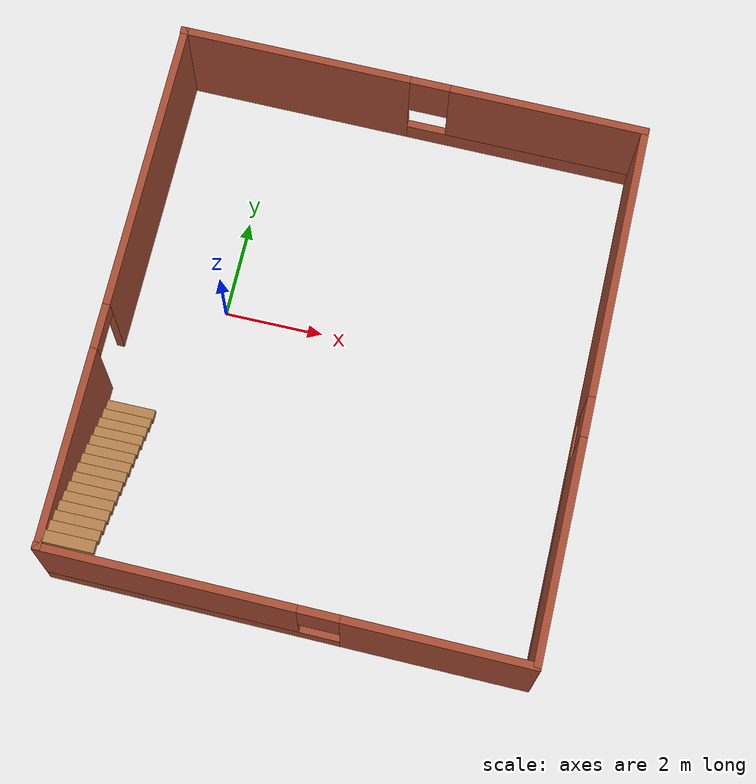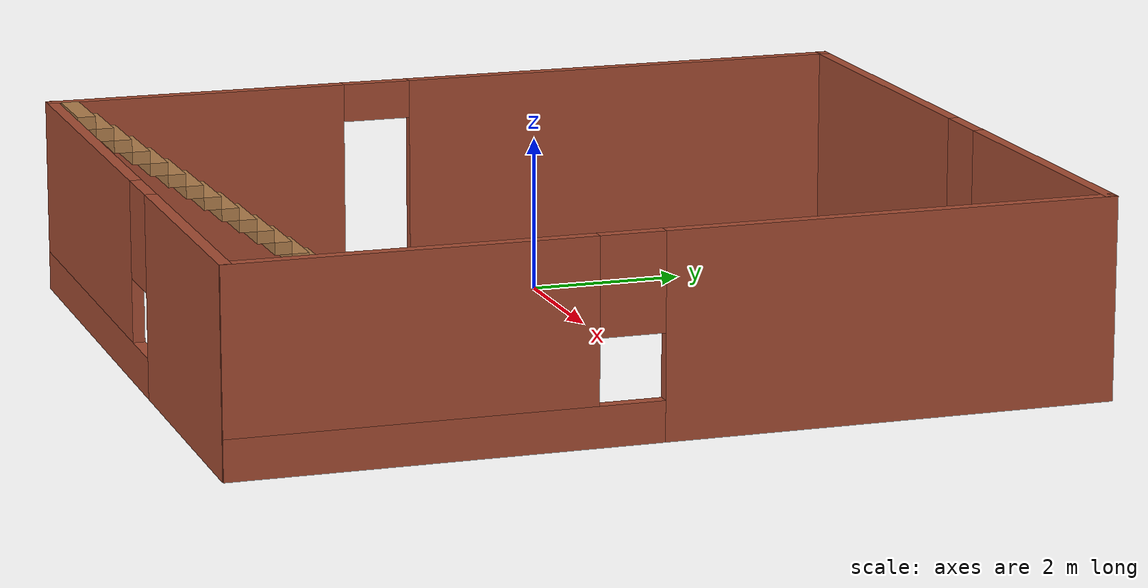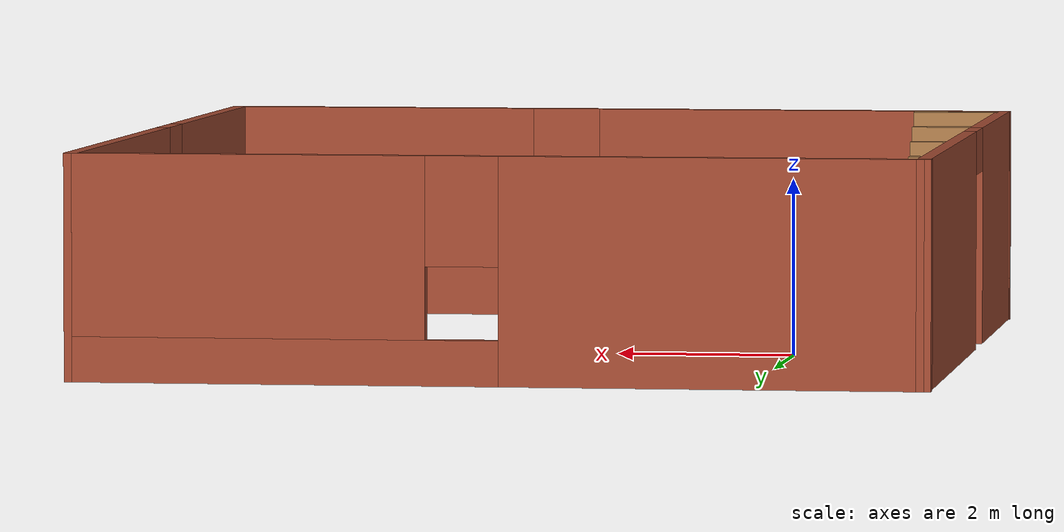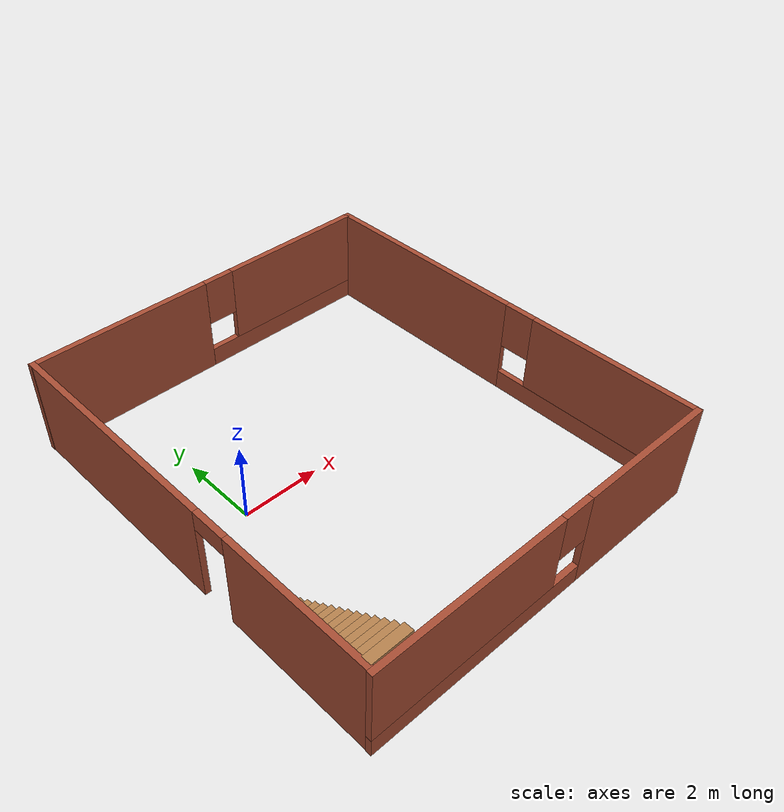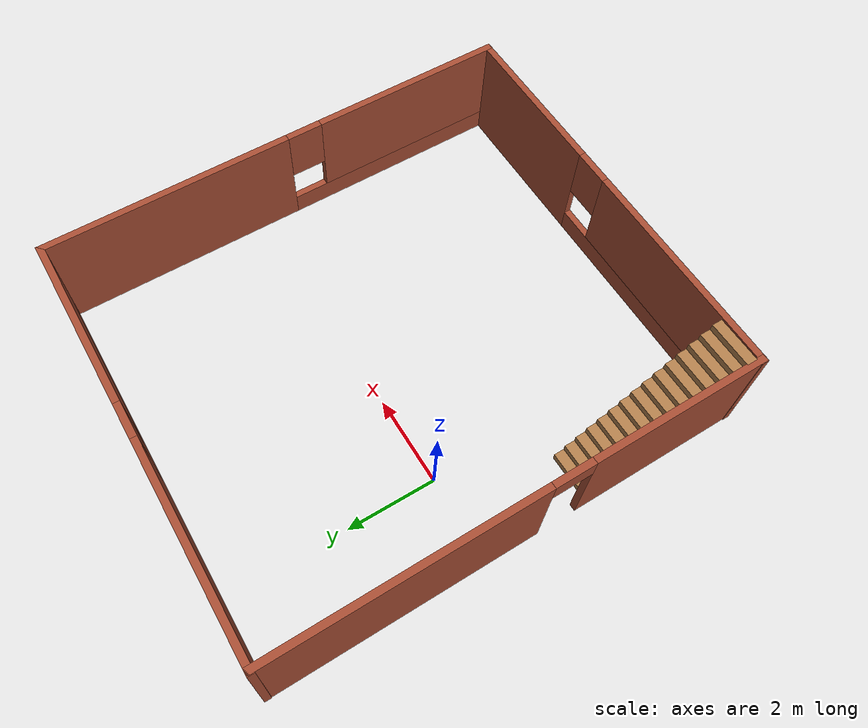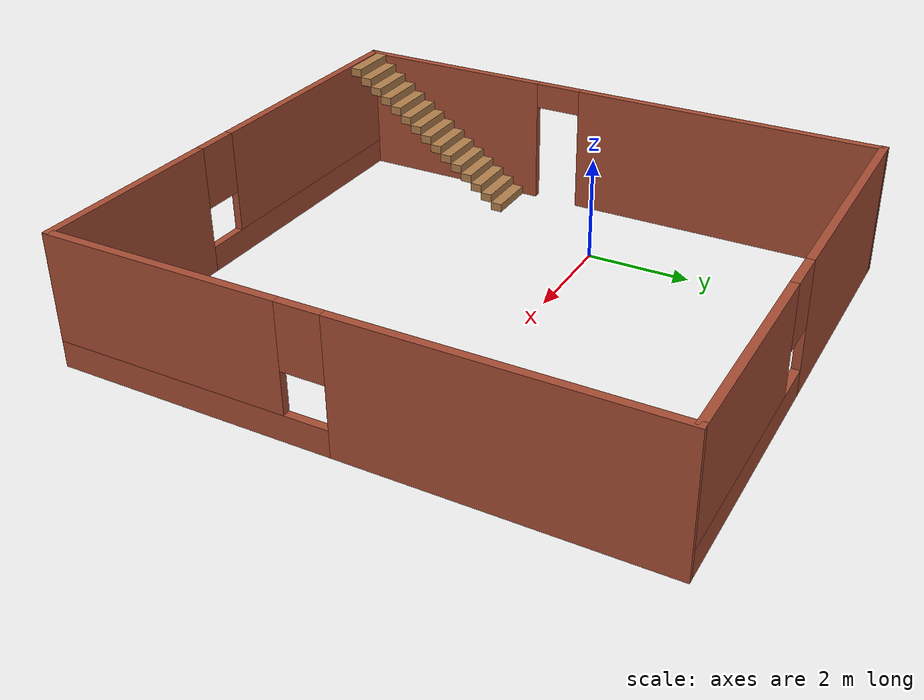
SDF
<?xml version='1.0'?>
<sdf version='1.7'>
  <model name='test_World2'>
    <pose>2.74464 -0.619683 0 0 -0 0</pose>
    <link name='Stairs_0'>
      <visual name='Stairs_0_Visual_0'>
        <pose>-4.09164 -1.84319 0.083333 0 -0 0</pose>
        <geometry>
          <box>
            <size>1 0.233333 0.166667</size>
          </box>
        </geometry>
        <material>
          <script>
            <uri>file://media/materials/scripts/gazebo.material</uri>
            <name>Gazebo/Wood</name>
          </script>
          <ambient>0.760784 0.662745 0.627451 1</ambient>
        </material>
        <meta>
          <layer>0</layer>
        </meta>
      </visual>
      <collision name='Stairs_0_Collision_0'>
        <geometry>
          <box>
            <size>1 0.233333 0.166667</size>
          </box>
        </geometry>
        <pose>-4.09164 -1.84319 0.083333 0 -0 0</pose>
      </collision>
      <visual name='Stairs_0_Visual_1'>
        <pose>-4.09164 -2.07653 0.25 0 -0 0</pose>
        <geometry>
          <box>
            <size>1 0.233333 0.166667</size>
          </box>
        </geometry>
        <material>
          <script>
            <uri>file://media/materials/scripts/gazebo.material</uri>
            <name>Gazebo/Wood</name>
          </script>
          <ambient>0.760784 0.662745 0.627451 1</ambient>
        </material>
        <meta>
          <layer>0</layer>
        </meta>
      </visual>
      <collision name='Stairs_0_Collision_1'>
        <geometry>
          <box>
            <size>1 0.233333 0.166667</size>
          </box>
        </geometry>
        <pose>-4.09164 -2.07653 0.25 0 -0 0</pose>
      </collision>
      <visual name='Stairs_0_Visual_2'>
        <pose>-4.09164 -2.30986 0.416667 0 -0 0</pose>
        <geometry>
          <box>
            <size>1 0.233333 0.166667</size>
          </box>
        </geometry>
        <material>
          <script>
            <uri>file://media/materials/scripts/gazebo.material</uri>
            <name>Gazebo/Wood</name>
          </script>
          <ambient>0.760784 0.662745 0.627451 1</ambient>
        </material>
        <meta>
          <layer>0</layer>
        </meta>
      </visual>
      <collision name='Stairs_0_Collision_2'>
        <geometry>
          <box>
            <size>1 0.233333 0.166667</size>
          </box>
        </geometry>
        <pose>-4.09164 -2.30986 0.416667 0 -0 0</pose>
      </collision>
      <visual name='Stairs_0_Visual_3'>
        <pose>-4.09164 -2.54319 0.583333 0 -0 0</pose>
        <geometry>
          <box>
            <size>1 0.233333 0.166667</size>
          </box>
        </geometry>
        <material>
          <script>
            <uri>file://media/materials/scripts/gazebo.material</uri>
            <name>Gazebo/Wood</name>
          </script>
          <ambient>0.760784 0.662745 0.627451 1</ambient>
        </material>
        <meta>
          <layer>0</layer>
        </meta>
      </visual>
      <collision name='Stairs_0_Collision_3'>
        <geometry>
          <box>
            <size>1 0.233333 0.166667</size>
          </box>
        </geometry>
        <pose>-4.09164 -2.54319 0.583333 0 -0 0</pose>
      </collision>
      <visual name='Stairs_0_Visual_4'>
        <pose>-4.09164 -2.77653 0.75 0 -0 0</pose>
        <geometry>
          <box>
            <size>1 0.233333 0.166667</size>
          </box>
        </geometry>
        <material>
          <script>
            <uri>file://media/materials/scripts/gazebo.material</uri>
            <name>Gazebo/Wood</name>
          </script>
          <ambient>0.760784 0.662745 0.627451 1</ambient>
        </material>
        <meta>
          <layer>0</layer>
        </meta>
      </visual>
      <collision name='Stairs_0_Collision_4'>
        <geometry>
          <box>
            <size>1 0.233333 0.166667</size>
          </box>
        </geometry>
        <pose>-4.09164 -2.77653 0.75 0 -0 0</pose>
      </collision>
      <visual name='Stairs_0_Visual_5'>
        <pose>-4.09164 -3.00986 0.916667 0 -0 0</pose>
        <geometry>
          <box>
            <size>1 0.233333 0.166667</size>
          </box>
        </geometry>
        <material>
          <script>
            <uri>file://media/materials/scripts/gazebo.material</uri>
            <name>Gazebo/Wood</name>
          </script>
          <ambient>0.760784 0.662745 0.627451 1</ambient>
        </material>
        <meta>
          <layer>0</layer>
        </meta>
      </visual>
      <collision name='Stairs_0_Collision_5'>
        <geometry>
          <box>
            <size>1 0.233333 0.166667</size>
          </box>
        </geometry>
        <pose>-4.09164 -3.00986 0.916667 0 -0 0</pose>
      </collision>
      <visual name='Stairs_0_Visual_6'>
        <pose>-4.09164 -3.24319 1.08333 0 -0 0</pose>
        <geometry>
          <box>
            <size>1 0.233333 0.166667</size>
          </box>
        </geometry>
        <material>
          <script>
            <uri>file://media/materials/scripts/gazebo.material</uri>
            <name>Gazebo/Wood</name>
          </script>
          <ambient>0.760784 0.662745 0.627451 1</ambient>
        </material>
        <meta>
          <layer>0</layer>
        </meta>
      </visual>
      <collision name='Stairs_0_Collision_6'>
        <geometry>
          <box>
            <size>1 0.233333 0.166667</size>
          </box>
        </geometry>
        <pose>-4.09164 -3.24319 1.08333 0 -0 0</pose>
      </collision>
      <visual name='Stairs_0_Visual_7'>
        <pose>-4.09164 -3.47653 1.25 0 -0 0</pose>
        <geometry>
          <box>
            <size>1 0.233333 0.166667</size>
          </box>
        </geometry>
        <material>
          <script>
            <uri>file://media/materials/scripts/gazebo.material</uri>
            <name>Gazebo/Wood</name>
          </script>
          <ambient>0.760784 0.662745 0.627451 1</ambient>
        </material>
        <meta>
          <layer>0</layer>
        </meta>
      </visual>
      <collision name='Stairs_0_Collision_7'>
        <geometry>
          <box>
            <size>1 0.233333 0.166667</size>
          </box>
        </geometry>
        <pose>-4.09164 -3.47653 1.25 0 -0 0</pose>
      </collision>
      <visual name='Stairs_0_Visual_8'>
        <pose>-4.09164 -3.70986 1.41667 0 -0 0</pose>
        <geometry>
          <box>
            <size>1 0.233333 0.166667</size>
          </box>
        </geometry>
        <material>
          <script>
            <uri>file://media/materials/scripts/gazebo.material</uri>
            <name>Gazebo/Wood</name>
          </script>
          <ambient>0.760784 0.662745 0.627451 1</ambient>
        </material>
        <meta>
          <layer>0</layer>
        </meta>
      </visual>
      <collision name='Stairs_0_Collision_8'>
        <geometry>
          <box>
            <size>1 0.233333 0.166667</size>
          </box>
        </geometry>
        <pose>-4.09164 -3.70986 1.41667 0 -0 0</pose>
      </collision>
      <visual name='Stairs_0_Visual_9'>
        <pose>-4.09164 -3.94319 1.58333 0 -0 0</pose>
        <geometry>
          <box>
            <size>1 0.233333 0.166667</size>
          </box>
        </geometry>
        <material>
          <script>
            <uri>file://media/materials/scripts/gazebo.material</uri>
            <name>Gazebo/Wood</name>
          </script>
          <ambient>0.760784 0.662745 0.627451 1</ambient>
        </material>
        <meta>
          <layer>0</layer>
        </meta>
      </visual>
      <collision name='Stairs_0_Collision_9'>
        <geometry>
          <box>
            <size>1 0.233333 0.166667</size>
          </box>
        </geometry>
        <pose>-4.09164 -3.94319 1.58333 0 -0 0</pose>
      </collision>
      <visual name='Stairs_0_Visual_10'>
        <pose>-4.09164 -4.17653 1.75 0 -0 0</pose>
        <geometry>
          <box>
            <size>1 0.233333 0.166667</size>
          </box>
        </geometry>
        <material>
          <script>
            <uri>file://media/materials/scripts/gazebo.material</uri>
            <name>Gazebo/Wood</name>
          </script>
          <ambient>0.760784 0.662745 0.627451 1</ambient>
        </material>
        <meta>
          <layer>0</layer>
        </meta>
      </visual>
      <collision name='Stairs_0_Collision_10'>
        <geometry>
          <box>
            <size>1 0.233333 0.166667</size>
          </box>
        </geometry>
        <pose>-4.09164 -4.17653 1.75 0 -0 0</pose>
      </collision>
      <visual name='Stairs_0_Visual_11'>
        <pose>-4.09164 -4.40986 1.91667 0 -0 0</pose>
        <geometry>
          <box>
            <size>1 0.233333 0.166667</size>
          </box>
        </geometry>
        <material>
          <script>
            <uri>file://media/materials/scripts/gazebo.material</uri>
            <name>Gazebo/Wood</name>
          </script>
          <ambient>0.760784 0.662745 0.627451 1</ambient>
        </material>
        <meta>
          <layer>0</layer>
        </meta>
      </visual>
      <collision name='Stairs_0_Collision_11'>
        <geometry>
          <box>
            <size>1 0.233333 0.166667</size>
          </box>
        </geometry>
        <pose>-4.09164 -4.40986 1.91667 0 -0 0</pose>
      </collision>
      <visual name='Stairs_0_Visual_12'>
        <pose>-4.09164 -4.64319 2.08333 0 -0 0</pose>
        <geometry>
          <box>
            <size>1 0.233333 0.166667</size>
          </box>
        </geometry>
        <material>
          <script>
            <uri>file://media/materials/scripts/gazebo.material</uri>
            <name>Gazebo/Wood</name>
          </script>
          <ambient>0.760784 0.662745 0.627451 1</ambient>
        </material>
        <meta>
          <layer>0</layer>
        </meta>
      </visual>
      <collision name='Stairs_0_Collision_12'>
        <geometry>
          <box>
            <size>1 0.233333 0.166667</size>
          </box>
        </geometry>
        <pose>-4.09164 -4.64319 2.08333 0 -0 0</pose>
      </collision>
      <visual name='Stairs_0_Visual_13'>
        <pose>-4.09164 -4.87653 2.25 0 -0 0</pose>
        <geometry>
          <box>
            <size>1 0.233333 0.166667</size>
          </box>
        </geometry>
        <material>
          <script>
            <uri>file://media/materials/scripts/gazebo.material</uri>
            <name>Gazebo/Wood</name>
          </script>
          <ambient>0.760784 0.662745 0.627451 1</ambient>
        </material>
        <meta>
          <layer>0</layer>
        </meta>
      </visual>
      <collision name='Stairs_0_Collision_13'>
        <geometry>
          <box>
            <size>1 0.233333 0.166667</size>
          </box>
        </geometry>
        <pose>-4.09164 -4.87653 2.25 0 -0 0</pose>
      </collision>
      <visual name='Stairs_0_Visual_14'>
        <pose>-4.09164 -5.10986 2.41667 0 -0 0</pose>
        <geometry>
          <box>
            <size>1 0.233333 0.166667</size>
          </box>
        </geometry>
        <material>
          <script>
            <uri>file://media/materials/scripts/gazebo.material</uri>
            <name>Gazebo/Wood</name>
          </script>
          <ambient>0.760784 0.662745 0.627451 1</ambient>
        </material>
        <meta>
          <layer>0</layer>
        </meta>
      </visual>
      <collision name='Stairs_0_Collision_14'>
        <geometry>
          <box>
            <size>1 0.233333 0.166667</size>
          </box>
        </geometry>
        <pose>-4.09164 -5.10986 2.41667 0 -0 0</pose>
      </collision>
    </link>
    <link name='Wall_0'>
      <pose>0.003718 -5.36991 0 0 -0 3.13241</pose>
      <visual name='Wall_0_Visual_0'>
        <pose>-2.8855 0 1.25 0 -0 0</pose>
        <geometry>
          <box>
            <size>3.68907 0.15 2.5</size>
          </box>
        </geometry>
        <material>
          <script>
            <uri>file://media/materials/scripts/gazebo.material</uri>
            <name>Gazebo/Bricks</name>
          </script>
          <ambient>0.996078 0.47451 0.0196078 1</ambient>
        </material>
        <meta>
          <layer>0</layer>
        </meta>
      </visual>
      <collision name='Wall_0_Collision_0'>
        <geometry>
          <box>
            <size>3.68907 0.15 2.5</size>
          </box>
        </geometry>
        <pose>-2.8855 0 1.25 0 -0 0</pose>
      </collision>
      <visual name='Wall_0_Visual_1'>
        <pose>1.84454 0 0.25 0 -0 0</pose>
        <geometry>
          <box>
            <size>5.77101 0.15 0.5</size>
          </box>
        </geometry>
        <material>
          <script>
            <uri>file://media/materials/scripts/gazebo.material</uri>
            <name>Gazebo/Bricks</name>
          </script>
          <ambient>0.996078 0.47451 0.0196078 1</ambient>
        </material>
        <meta>
          <layer>0</layer>
        </meta>
      </visual>
      <collision name='Wall_0_Collision_1'>
        <geometry>
          <box>
            <size>5.77101 0.15 0.5</size>
          </box>
        </geometry>
        <pose>1.84454 0 0.25 0 -0 0</pose>
      </collision>
      <visual name='Wall_0_Visual_2'>
        <pose>2.24453 0 1.5 0 -0 0</pose>
        <geometry>
          <box>
            <size>4.97101 0.15 2</size>
          </box>
        </geometry>
        <material>
          <script>
            <uri>file://media/materials/scripts/gazebo.material</uri>
            <name>Gazebo/Bricks</name>
          </script>
          <ambient>0.996078 0.47451 0.0196078 1</ambient>
        </material>
        <meta>
          <layer>0</layer>
        </meta>
      </visual>
      <collision name='Wall_0_Collision_2'>
        <geometry>
          <box>
            <size>4.97101 0.15 2</size>
          </box>
        </geometry>
        <pose>2.24453 0 1.5 0 -0 0</pose>
      </collision>
      <visual name='Wall_0_Visual_3'>
        <pose>-0.640969 0 1.9 0 -0 0</pose>
        <geometry>
          <box>
            <size>0.8 0.15 1.2</size>
          </box>
        </geometry>
        <material>
          <script>
            <uri>file://media/materials/scripts/gazebo.material</uri>
            <name>Gazebo/Bricks</name>
          </script>
          <ambient>0.996078 0.47451 0.0196078 1</ambient>
        </material>
        <meta>
          <layer>0</layer>
        </meta>
      </visual>
      <collision name='Wall_0_Collision_3'>
        <geometry>
          <box>
            <size>0.8 0.15 1.2</size>
          </box>
        </geometry>
        <pose>-0.640969 0 1.9 0 -0 0</pose>
      </collision>
    </link>
    <link name='Wall_1'>
      <pose>-4.64791 0.046027 0 0 -0 1.57265</pose>
      <visual name='Wall_1_Visual_0'>
        <pose>-3.45713 0 1.25 0 -0 0</pose>
        <geometry>
          <box>
            <size>3.969 0.15 2.5</size>
          </box>
        </geometry>
        <material>
          <script>
            <uri>file://media/materials/scripts/gazebo.material</uri>
            <name>Gazebo/Bricks</name>
          </script>
          <ambient>0.760784 0.662745 0.627451 1</ambient>
        </material>
        <meta>
          <layer>0</layer>
        </meta>
      </visual>
      <collision name='Wall_1_Collision_0'>
        <geometry>
          <box>
            <size>3.969 0.15 2.5</size>
          </box>
        </geometry>
        <pose>-3.45713 0 1.25 0 -0 0</pose>
      </collision>
      <visual name='Wall_1_Visual_1'>
        <pose>2.4345 0 1.25 0 -0 0</pose>
        <geometry>
          <box>
            <size>6.01427 0.15 2.5</size>
          </box>
        </geometry>
        <material>
          <script>
            <uri>file://media/materials/scripts/gazebo.material</uri>
            <name>Gazebo/Bricks</name>
          </script>
          <ambient>0.760784 0.662745 0.627451 1</ambient>
        </material>
        <meta>
          <layer>0</layer>
        </meta>
      </visual>
      <collision name='Wall_1_Collision_1'>
        <geometry>
          <box>
            <size>6.01427 0.15 2.5</size>
          </box>
        </geometry>
        <pose>2.4345 0 1.25 0 -0 0</pose>
      </collision>
      <visual name='Wall_1_Visual_2'>
        <pose>-1.02264 0 2.25 0 -0 0</pose>
        <geometry>
          <box>
            <size>0.9 0.15 0.5</size>
          </box>
        </geometry>
        <material>
          <script>
            <uri>file://media/materials/scripts/gazebo.material</uri>
            <name>Gazebo/Bricks</name>
          </script>
          <ambient>0.760784 0.662745 0.627451 1</ambient>
        </material>
        <meta>
          <layer>0</layer>
        </meta>
      </visual>
      <collision name='Wall_1_Collision_2'>
        <geometry>
          <box>
            <size>0.9 0.15 0.5</size>
          </box>
        </geometry>
        <pose>-1.02264 0 2.25 0 -0 0</pose>
      </collision>
    </link>
    <link name='Wall_2'>
      <pose>-0.009656 5.36991 0 0 -0 -0.009168</pose>
      <visual name='Wall_2_Visual_0'>
        <pose>-2.38618 0 1.25 0 -0 0</pose>
        <geometry>
          <box>
            <size>4.70088 0.15 2.5</size>
          </box>
        </geometry>
        <material>
          <script>
            <uri>file://media/materials/scripts/gazebo.material</uri>
            <name>Gazebo/Bricks</name>
          </script>
          <ambient>0.760784 0.662745 0.627451 1</ambient>
        </material>
        <meta>
          <layer>0</layer>
        </meta>
      </visual>
      <collision name='Wall_2_Collision_0'>
        <geometry>
          <box>
            <size>4.70088 0.15 2.5</size>
          </box>
        </geometry>
        <pose>-2.38618 0 1.25 0 -0 0</pose>
      </collision>
      <visual name='Wall_2_Visual_1'>
        <pose>2.35044 0 0.25 0 -0 0</pose>
        <geometry>
          <box>
            <size>4.77235 0.15 0.5</size>
          </box>
        </geometry>
        <material>
          <script>
            <uri>file://media/materials/scripts/gazebo.material</uri>
            <name>Gazebo/Bricks</name>
          </script>
          <ambient>0.760784 0.662745 0.627451 1</ambient>
        </material>
        <meta>
          <layer>0</layer>
        </meta>
      </visual>
      <collision name='Wall_2_Collision_1'>
        <geometry>
          <box>
            <size>4.77235 0.15 0.5</size>
          </box>
        </geometry>
        <pose>2.35044 0 0.25 0 -0 0</pose>
      </collision>
      <visual name='Wall_2_Visual_2'>
        <pose>2.75044 0 1.5 0 -0 0</pose>
        <geometry>
          <box>
            <size>3.97235 0.15 2</size>
          </box>
        </geometry>
        <material>
          <script>
            <uri>file://media/materials/scripts/gazebo.material</uri>
            <name>Gazebo/Bricks</name>
          </script>
          <ambient>0.760784 0.662745 0.627451 1</ambient>
        </material>
        <meta>
          <layer>0</layer>
        </meta>
      </visual>
      <collision name='Wall_2_Collision_2'>
        <geometry>
          <box>
            <size>3.97235 0.15 2</size>
          </box>
        </geometry>
        <pose>2.75044 0 1.5 0 -0 0</pose>
      </collision>
      <visual name='Wall_2_Visual_3'>
        <pose>0.364262 0 1.9 0 -0 0</pose>
        <geometry>
          <box>
            <size>0.8 0.15 1.2</size>
          </box>
        </geometry>
        <material>
          <script>
            <uri>file://media/materials/scripts/gazebo.material</uri>
            <name>Gazebo/Bricks</name>
          </script>
          <ambient>0.760784 0.662745 0.627451 1</ambient>
        </material>
        <meta>
          <layer>0</layer>
        </meta>
      </visual>
      <collision name='Wall_2_Collision_3'>
        <geometry>
          <box>
            <size>0.8 0.15 1.2</size>
          </box>
        </geometry>
        <pose>0.364262 0 1.9 0 -0 0</pose>
      </collision>
    </link>
    <link name='Wall_3'>
      <pose>4.66835 -0.039451 0 0 -0 -1.57017</pose>
      <visual name='Wall_3_Visual_0'>
        <pose>-2.6173 0 1.25 0 -0 0</pose>
        <geometry>
          <box>
            <size>5.64865 0.15 2.5</size>
          </box>
        </geometry>
        <material>
          <script>
            <uri>file://media/materials/scripts/gazebo.material</uri>
            <name>Gazebo/Bricks</name>
          </script>
          <ambient>0.996078 0.47451 0.0196078 1</ambient>
        </material>
        <meta>
          <layer>0</layer>
        </meta>
      </visual>
      <collision name='Wall_3_Collision_0'>
        <geometry>
          <box>
            <size>5.64865 0.15 2.5</size>
          </box>
        </geometry>
        <pose>-2.6173 0 1.25 0 -0 0</pose>
      </collision>
      <visual name='Wall_3_Visual_1'>
        <pose>2.82433 0 0.25 0 -0 0</pose>
        <geometry>
          <box>
            <size>5.23459 0.15 0.5</size>
          </box>
        </geometry>
        <material>
          <script>
            <uri>file://media/materials/scripts/gazebo.material</uri>
            <name>Gazebo/Bricks</name>
          </script>
          <ambient>0.996078 0.47451 0.0196078 1</ambient>
        </material>
        <meta>
          <layer>0</layer>
        </meta>
      </visual>
      <collision name='Wall_3_Collision_1'>
        <geometry>
          <box>
            <size>5.23459 0.15 0.5</size>
          </box>
        </geometry>
        <pose>2.82433 0 0.25 0 -0 0</pose>
      </collision>
      <visual name='Wall_3_Visual_2'>
        <pose>3.22433 0 1.5 0 -0 0</pose>
        <geometry>
          <box>
            <size>4.43459 0.15 2</size>
          </box>
        </geometry>
        <material>
          <script>
            <uri>file://media/materials/scripts/gazebo.material</uri>
            <name>Gazebo/Bricks</name>
          </script>
          <ambient>0.996078 0.47451 0.0196078 1</ambient>
        </material>
        <meta>
          <layer>0</layer>
        </meta>
      </visual>
      <collision name='Wall_3_Collision_2'>
        <geometry>
          <box>
            <size>4.43459 0.15 2</size>
          </box>
        </geometry>
        <pose>3.22433 0 1.5 0 -0 0</pose>
      </collision>
      <visual name='Wall_3_Visual_3'>
        <pose>0.60703 0 1.9 0 -0 0</pose>
        <geometry>
          <box>
            <size>0.8 0.15 1.2</size>
          </box>
        </geometry>
        <material>
          <script>
            <uri>file://media/materials/scripts/gazebo.material</uri>
            <name>Gazebo/Bricks</name>
          </script>
          <ambient>0.996078 0.47451 0.0196078 1</ambient>
        </material>
        <meta>
          <layer>0</layer>
        </meta>
      </visual>
      <collision name='Wall_3_Collision_3'>
        <geometry>
          <box>
            <size>0.8 0.15 1.2</size>
          </box>
        </geometry>
        <pose>0.60703 0 1.9 0 -0 0</pose>
      </collision>
    </link>
    <static>1</static>
  </model>
</sdf>
